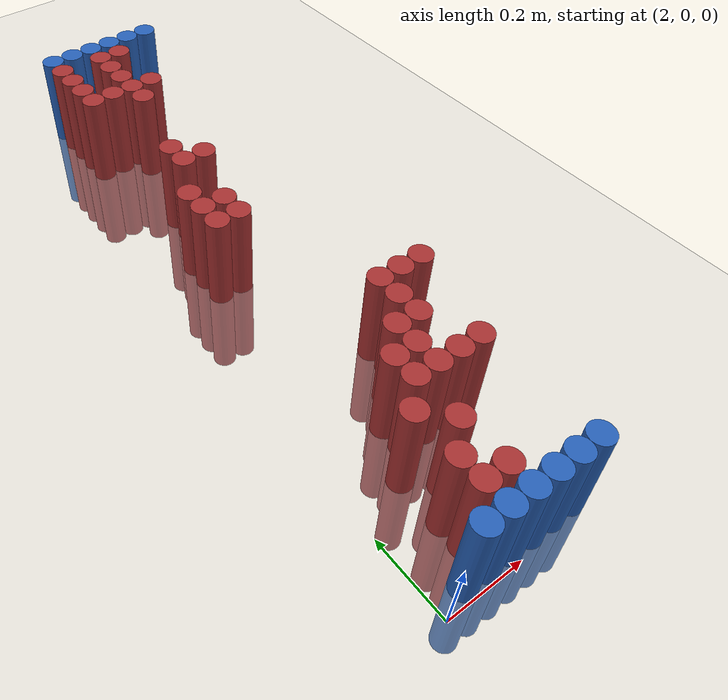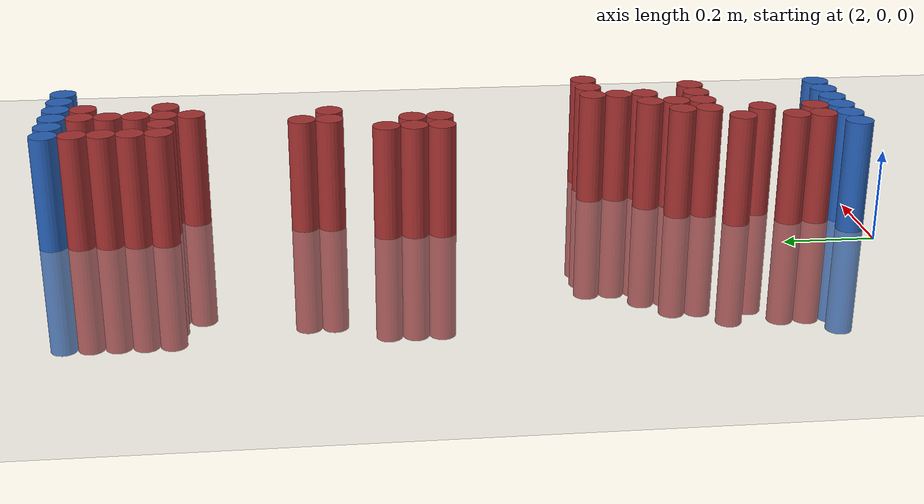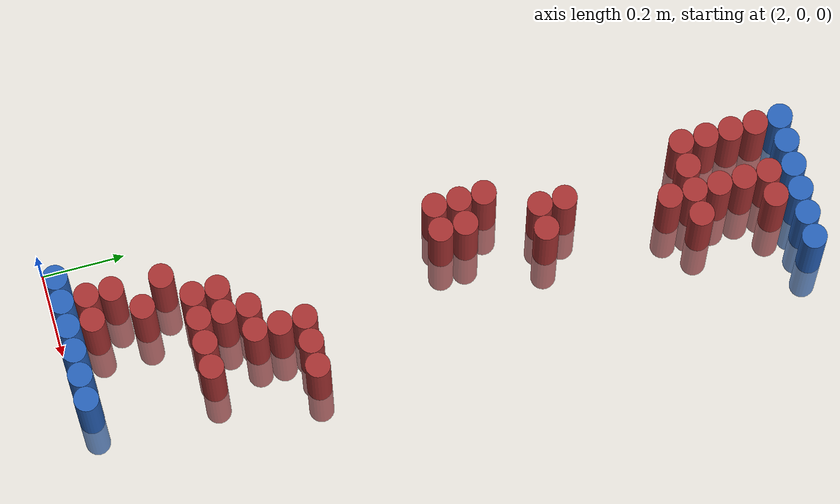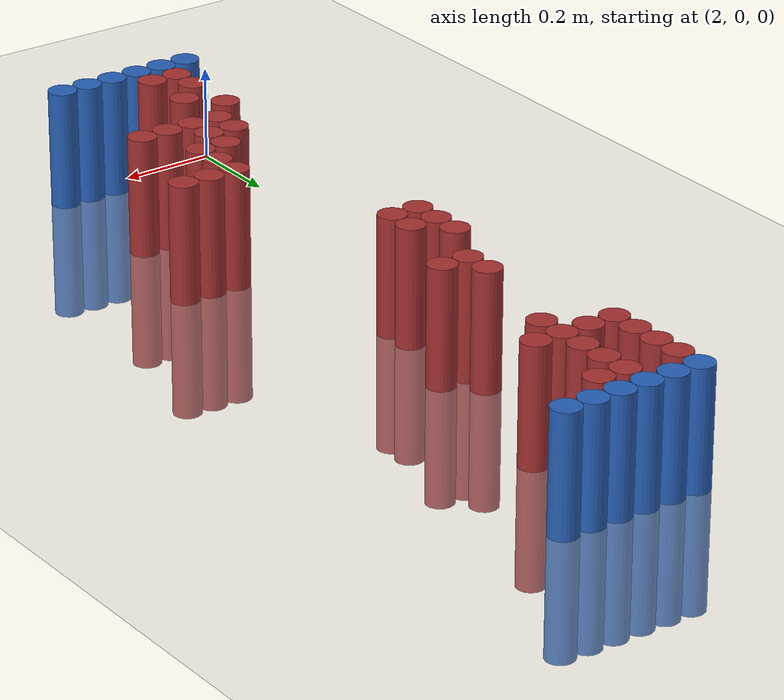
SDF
<sdf version="1.6">
 <world name="default">
  <model name="ground_plane">
   <static>1</static>
   <link name="link">
    <collision name="collision">
     <geometry><plane><normal>0 0 1</normal><size>100 100</size></plane></geometry>
     <surface><friction><ode><mu>100</mu><mu2>50</mu2></ode></friction></surface>
    </collision>
    <visual name="visual">
     <cast_shadows>0</cast_shadows>
     <geometry><plane><normal>0 0 1</normal><size>100 100</size></plane></geometry>
     <material>
      <script><uri>file://media/materials/scripts/gazebo.material</uri><name>Gazebo/Grey</name></script>
     </material>
    </visual>
   </link>
  </model>
  <model name="unit_cylinder_96">
   <static>1</static>
   <pose>2.130000 1.770000 0.000000 0.000000 0.000000 0.000000</pose>
   <link name="link">
    <inertial>
     <mass>1</mass>
     <inertia><ixx>0.145833</ixx><ixy>0</ixy><ixz>0</ixz><iyy>0.145833</iyy><iyz>0</iyz><izz>0.125</izz></inertia>
    </inertial>
    <collision name="collision">
     <geometry><cylinder><radius>0.030000</radius><length>0.5</length></cylinder></geometry>
    </collision>
    <visual name="visual">
     <geometry><cylinder><radius>0.030000</radius><length>0.5</length></cylinder></geometry>
     <material>
      <ambient>0.152000 0.379000 0.720000 1</ambient>
      <diffuse>0.152000 0.379000 0.720000 1</diffuse>
     </material>
     <material>
      <script><name>Gazebo/Grey</name><uri>file://media/materials/scripts/gazebo.material</uri></script>
     </material>
    </visual>
   </link>
  </model>
  <model name="unit_cylinder_97">
   <static>1</static>
   <pose>2.190000 1.770000 0.000000 0.000000 0.000000 0.000000</pose>
   <link name="link">
    <inertial>
     <mass>1</mass>
     <inertia><ixx>0.145833</ixx><ixy>0</ixy><ixz>0</ixz><iyy>0.145833</iyy><iyz>0</iyz><izz>0.125</izz></inertia>
    </inertial>
    <collision name="collision">
     <geometry><cylinder><radius>0.030000</radius><length>0.5</length></cylinder></geometry>
    </collision>
    <visual name="visual">
     <geometry><cylinder><radius>0.030000</radius><length>0.5</length></cylinder></geometry>
     <material>
      <ambient>0.152000 0.379000 0.720000 1</ambient>
      <diffuse>0.152000 0.379000 0.720000 1</diffuse>
     </material>
     <material>
      <script><name>Gazebo/Grey</name><uri>file://media/materials/scripts/gazebo.material</uri></script>
     </material>
    </visual>
   </link>
  </model>
  <model name="unit_cylinder_98">
   <static>1</static>
   <pose>2.250000 1.770000 0.000000 0.000000 0.000000 0.000000</pose>
   <link name="link">
    <inertial>
     <mass>1</mass>
     <inertia><ixx>0.145833</ixx><ixy>0</ixy><ixz>0</ixz><iyy>0.145833</iyy><iyz>0</iyz><izz>0.125</izz></inertia>
    </inertial>
    <collision name="collision">
     <geometry><cylinder><radius>0.030000</radius><length>0.5</length></cylinder></geometry>
    </collision>
    <visual name="visual">
     <geometry><cylinder><radius>0.030000</radius><length>0.5</length></cylinder></geometry>
     <material>
      <ambient>0.152000 0.379000 0.720000 1</ambient>
      <diffuse>0.152000 0.379000 0.720000 1</diffuse>
     </material>
     <material>
      <script><name>Gazebo/Grey</name><uri>file://media/materials/scripts/gazebo.material</uri></script>
     </material>
    </visual>
   </link>
  </model>
  <model name="unit_cylinder_99">
   <static>1</static>
   <pose>2.310000 1.770000 0.000000 0.000000 0.000000 0.000000</pose>
   <link name="link">
    <inertial>
     <mass>1</mass>
     <inertia><ixx>0.145833</ixx><ixy>0</ixy><ixz>0</ixz><iyy>0.145833</iyy><iyz>0</iyz><izz>0.125</izz></inertia>
    </inertial>
    <collision name="collision">
     <geometry><cylinder><radius>0.030000</radius><length>0.5</length></cylinder></geometry>
    </collision>
    <visual name="visual">
     <geometry><cylinder><radius>0.030000</radius><length>0.5</length></cylinder></geometry>
     <material>
      <ambient>0.152000 0.379000 0.720000 1</ambient>
      <diffuse>0.152000 0.379000 0.720000 1</diffuse>
     </material>
     <material>
      <script><name>Gazebo/Grey</name><uri>file://media/materials/scripts/gazebo.material</uri></script>
     </material>
    </visual>
   </link>
  </model>
  <model name="unit_cylinder_100">
   <static>1</static>
   <pose>2.370000 1.770000 0.000000 0.000000 0.000000 0.000000</pose>
   <link name="link">
    <inertial>
     <mass>1</mass>
     <inertia><ixx>0.145833</ixx><ixy>0</ixy><ixz>0</ixz><iyy>0.145833</iyy><iyz>0</iyz><izz>0.125</izz></inertia>
    </inertial>
    <collision name="collision">
     <geometry><cylinder><radius>0.030000</radius><length>0.5</length></cylinder></geometry>
    </collision>
    <visual name="visual">
     <geometry><cylinder><radius>0.030000</radius><length>0.5</length></cylinder></geometry>
     <material>
      <ambient>0.152000 0.379000 0.720000 1</ambient>
      <diffuse>0.152000 0.379000 0.720000 1</diffuse>
     </material>
     <material>
      <script><name>Gazebo/Grey</name><uri>file://media/materials/scripts/gazebo.material</uri></script>
     </material>
    </visual>
   </link>
  </model>
  <model name="unit_cylinder_101">
   <static>1</static>
   <pose>2.430000 1.770000 0.000000 0.000000 0.000000 0.000000</pose>
   <link name="link">
    <inertial>
     <mass>1</mass>
     <inertia><ixx>0.145833</ixx><ixy>0</ixy><ixz>0</ixz><iyy>0.145833</iyy><iyz>0</iyz><izz>0.125</izz></inertia>
    </inertial>
    <collision name="collision">
     <geometry><cylinder><radius>0.030000</radius><length>0.5</length></cylinder></geometry>
    </collision>
    <visual name="visual">
     <geometry><cylinder><radius>0.030000</radius><length>0.5</length></cylinder></geometry>
     <material>
      <ambient>0.152000 0.379000 0.720000 1</ambient>
      <diffuse>0.152000 0.379000 0.720000 1</diffuse>
     </material>
     <material>
      <script><name>Gazebo/Grey</name><uri>file://media/materials/scripts/gazebo.material</uri></script>
     </material>
    </visual>
   </link>
  </model>
  <model name="unit_cylinder_125">
   <static>1</static>
   <pose>2.130000 1.710000 0.000000 0.000000 0.000000 0.000000</pose>
   <link name="link">
    <inertial>
     <mass>1</mass>
     <inertia><ixx>0.145833</ixx><ixy>0</ixy><ixz>0</ixz><iyy>0.145833</iyy><iyz>0</iyz><izz>0.125</izz></inertia>
    </inertial>
    <collision name="collision">
     <geometry><cylinder><radius>0.030000</radius><length>0.5</length></cylinder></geometry>
    </collision>
    <visual name="visual">
     <geometry><cylinder><radius>0.030000</radius><length>0.5</length></cylinder></geometry>
     <material>
      <ambient>0.648000 0.192000 0.192000 1</ambient>
      <diffuse>0.648000 0.192000 0.192000 1</diffuse>
     </material>
     <material>
      <script><name>Gazebo/Grey</name><uri>file://media/materials/scripts/gazebo.material</uri></script>
     </material>
    </visual>
   </link>
  </model>
  <model name="unit_cylinder_126">
   <static>1</static>
   <pose>2.250000 1.710000 0.000000 0.000000 0.000000 0.000000</pose>
   <link name="link">
    <inertial>
     <mass>1</mass>
     <inertia><ixx>0.145833</ixx><ixy>0</ixy><ixz>0</ixz><iyy>0.145833</iyy><iyz>0</iyz><izz>0.125</izz></inertia>
    </inertial>
    <collision name="collision">
     <geometry><cylinder><radius>0.030000</radius><length>0.5</length></cylinder></geometry>
    </collision>
    <visual name="visual">
     <geometry><cylinder><radius>0.030000</radius><length>0.5</length></cylinder></geometry>
     <material>
      <ambient>0.648000 0.192000 0.192000 1</ambient>
      <diffuse>0.648000 0.192000 0.192000 1</diffuse>
     </material>
     <material>
      <script><name>Gazebo/Grey</name><uri>file://media/materials/scripts/gazebo.material</uri></script>
     </material>
    </visual>
   </link>
  </model>
  <model name="unit_cylinder_127">
   <static>1</static>
   <pose>2.310000 1.710000 0.000000 0.000000 0.000000 0.000000</pose>
   <link name="link">
    <inertial>
     <mass>1</mass>
     <inertia><ixx>0.145833</ixx><ixy>0</ixy><ixz>0</ixz><iyy>0.145833</iyy><iyz>0</iyz><izz>0.125</izz></inertia>
    </inertial>
    <collision name="collision">
     <geometry><cylinder><radius>0.030000</radius><length>0.5</length></cylinder></geometry>
    </collision>
    <visual name="visual">
     <geometry><cylinder><radius>0.030000</radius><length>0.5</length></cylinder></geometry>
     <material>
      <ambient>0.648000 0.192000 0.192000 1</ambient>
      <diffuse>0.648000 0.192000 0.192000 1</diffuse>
     </material>
     <material>
      <script><name>Gazebo/Grey</name><uri>file://media/materials/scripts/gazebo.material</uri></script>
     </material>
    </visual>
   </link>
  </model>
  <model name="unit_cylinder_134">
   <static>1</static>
   <pose>2.130000 1.650000 0.000000 0.000000 0.000000 0.000000</pose>
   <link name="link">
    <inertial>
     <mass>1</mass>
     <inertia><ixx>0.145833</ixx><ixy>0</ixy><ixz>0</ixz><iyy>0.145833</iyy><iyz>0</iyz><izz>0.125</izz></inertia>
    </inertial>
    <collision name="collision">
     <geometry><cylinder><radius>0.030000</radius><length>0.5</length></cylinder></geometry>
    </collision>
    <visual name="visual">
     <geometry><cylinder><radius>0.030000</radius><length>0.5</length></cylinder></geometry>
     <material>
      <ambient>0.648000 0.192000 0.192000 1</ambient>
      <diffuse>0.648000 0.192000 0.192000 1</diffuse>
     </material>
     <material>
      <script><name>Gazebo/Grey</name><uri>file://media/materials/scripts/gazebo.material</uri></script>
     </material>
    </visual>
   </link>
  </model>
  <model name="unit_cylinder_135">
   <static>1</static>
   <pose>2.250000 1.650000 0.000000 0.000000 0.000000 0.000000</pose>
   <link name="link">
    <inertial>
     <mass>1</mass>
     <inertia><ixx>0.145833</ixx><ixy>0</ixy><ixz>0</ixz><iyy>0.145833</iyy><iyz>0</iyz><izz>0.125</izz></inertia>
    </inertial>
    <collision name="collision">
     <geometry><cylinder><radius>0.030000</radius><length>0.5</length></cylinder></geometry>
    </collision>
    <visual name="visual">
     <geometry><cylinder><radius>0.030000</radius><length>0.5</length></cylinder></geometry>
     <material>
      <ambient>0.648000 0.192000 0.192000 1</ambient>
      <diffuse>0.648000 0.192000 0.192000 1</diffuse>
     </material>
     <material>
      <script><name>Gazebo/Grey</name><uri>file://media/materials/scripts/gazebo.material</uri></script>
     </material>
    </visual>
   </link>
  </model>
  <model name="unit_cylinder_142">
   <static>1</static>
   <pose>2.130000 1.590000 0.000000 0.000000 0.000000 0.000000</pose>
   <link name="link">
    <inertial>
     <mass>1</mass>
     <inertia><ixx>0.145833</ixx><ixy>0</ixy><ixz>0</ixz><iyy>0.145833</iyy><iyz>0</iyz><izz>0.125</izz></inertia>
    </inertial>
    <collision name="collision">
     <geometry><cylinder><radius>0.030000</radius><length>0.5</length></cylinder></geometry>
    </collision>
    <visual name="visual">
     <geometry><cylinder><radius>0.030000</radius><length>0.5</length></cylinder></geometry>
     <material>
      <ambient>0.648000 0.192000 0.192000 1</ambient>
      <diffuse>0.648000 0.192000 0.192000 1</diffuse>
     </material>
     <material>
      <script><name>Gazebo/Grey</name><uri>file://media/materials/scripts/gazebo.material</uri></script>
     </material>
    </visual>
   </link>
  </model>
  <model name="unit_cylinder_143">
   <static>1</static>
   <pose>2.250000 1.590000 0.000000 0.000000 0.000000 0.000000</pose>
   <link name="link">
    <inertial>
     <mass>1</mass>
     <inertia><ixx>0.145833</ixx><ixy>0</ixy><ixz>0</ixz><iyy>0.145833</iyy><iyz>0</iyz><izz>0.125</izz></inertia>
    </inertial>
    <collision name="collision">
     <geometry><cylinder><radius>0.030000</radius><length>0.5</length></cylinder></geometry>
    </collision>
    <visual name="visual">
     <geometry><cylinder><radius>0.030000</radius><length>0.5</length></cylinder></geometry>
     <material>
      <ambient>0.648000 0.192000 0.192000 1</ambient>
      <diffuse>0.648000 0.192000 0.192000 1</diffuse>
     </material>
     <material>
      <script><name>Gazebo/Grey</name><uri>file://media/materials/scripts/gazebo.material</uri></script>
     </material>
    </visual>
   </link>
  </model>
  <model name="unit_cylinder_152">
   <static>1</static>
   <pose>2.130000 1.530000 0.000000 0.000000 0.000000 0.000000</pose>
   <link name="link">
    <inertial>
     <mass>1</mass>
     <inertia><ixx>0.145833</ixx><ixy>0</ixy><ixz>0</ixz><iyy>0.145833</iyy><iyz>0</iyz><izz>0.125</izz></inertia>
    </inertial>
    <collision name="collision">
     <geometry><cylinder><radius>0.030000</radius><length>0.5</length></cylinder></geometry>
    </collision>
    <visual name="visual">
     <geometry><cylinder><radius>0.030000</radius><length>0.5</length></cylinder></geometry>
     <material>
      <ambient>0.648000 0.192000 0.192000 1</ambient>
      <diffuse>0.648000 0.192000 0.192000 1</diffuse>
     </material>
     <material>
      <script><name>Gazebo/Grey</name><uri>file://media/materials/scripts/gazebo.material</uri></script>
     </material>
    </visual>
   </link>
  </model>
  <model name="unit_cylinder_153">
   <static>1</static>
   <pose>2.190000 1.530000 0.000000 0.000000 0.000000 0.000000</pose>
   <link name="link">
    <inertial>
     <mass>1</mass>
     <inertia><ixx>0.145833</ixx><ixy>0</ixy><ixz>0</ixz><iyy>0.145833</iyy><iyz>0</iyz><izz>0.125</izz></inertia>
    </inertial>
    <collision name="collision">
     <geometry><cylinder><radius>0.030000</radius><length>0.5</length></cylinder></geometry>
    </collision>
    <visual name="visual">
     <geometry><cylinder><radius>0.030000</radius><length>0.5</length></cylinder></geometry>
     <material>
      <ambient>0.648000 0.192000 0.192000 1</ambient>
      <diffuse>0.648000 0.192000 0.192000 1</diffuse>
     </material>
     <material>
      <script><name>Gazebo/Grey</name><uri>file://media/materials/scripts/gazebo.material</uri></script>
     </material>
    </visual>
   </link>
  </model>
  <model name="unit_cylinder_154">
   <static>1</static>
   <pose>2.250000 1.530000 0.000000 0.000000 0.000000 0.000000</pose>
   <link name="link">
    <inertial>
     <mass>1</mass>
     <inertia><ixx>0.145833</ixx><ixy>0</ixy><ixz>0</ixz><iyy>0.145833</iyy><iyz>0</iyz><izz>0.125</izz></inertia>
    </inertial>
    <collision name="collision">
     <geometry><cylinder><radius>0.030000</radius><length>0.5</length></cylinder></geometry>
    </collision>
    <visual name="visual">
     <geometry><cylinder><radius>0.030000</radius><length>0.5</length></cylinder></geometry>
     <material>
      <ambient>0.648000 0.192000 0.192000 1</ambient>
      <diffuse>0.648000 0.192000 0.192000 1</diffuse>
     </material>
     <material>
      <script><name>Gazebo/Grey</name><uri>file://media/materials/scripts/gazebo.material</uri></script>
     </material>
    </visual>
   </link>
  </model>
  <model name="unit_cylinder_155">
   <static>1</static>
   <pose>2.310000 1.530000 0.000000 0.000000 0.000000 0.000000</pose>
   <link name="link">
    <inertial>
     <mass>1</mass>
     <inertia><ixx>0.145833</ixx><ixy>0</ixy><ixz>0</ixz><iyy>0.145833</iyy><iyz>0</iyz><izz>0.125</izz></inertia>
    </inertial>
    <collision name="collision">
     <geometry><cylinder><radius>0.030000</radius><length>0.5</length></cylinder></geometry>
    </collision>
    <visual name="visual">
     <geometry><cylinder><radius>0.030000</radius><length>0.5</length></cylinder></geometry>
     <material>
      <ambient>0.648000 0.192000 0.192000 1</ambient>
      <diffuse>0.648000 0.192000 0.192000 1</diffuse>
     </material>
     <material>
      <script><name>Gazebo/Grey</name><uri>file://media/materials/scripts/gazebo.material</uri></script>
     </material>
    </visual>
   </link>
  </model>
  <model name="unit_cylinder_160">
   <static>1</static>
   <pose>2.250000 1.470000 0.000000 0.000000 0.000000 0.000000</pose>
   <link name="link">
    <inertial>
     <mass>1</mass>
     <inertia><ixx>0.145833</ixx><ixy>0</ixy><ixz>0</ixz><iyy>0.145833</iyy><iyz>0</iyz><izz>0.125</izz></inertia>
    </inertial>
    <collision name="collision">
     <geometry><cylinder><radius>0.030000</radius><length>0.5</length></cylinder></geometry>
    </collision>
    <visual name="visual">
     <geometry><cylinder><radius>0.030000</radius><length>0.5</length></cylinder></geometry>
     <material>
      <ambient>0.648000 0.192000 0.192000 1</ambient>
      <diffuse>0.648000 0.192000 0.192000 1</diffuse>
     </material>
     <material>
      <script><name>Gazebo/Grey</name><uri>file://media/materials/scripts/gazebo.material</uri></script>
     </material>
    </visual>
   </link>
  </model>
  <model name="unit_cylinder_171">
   <static>1</static>
   <pose>2.190000 1.230000 0.000000 0.000000 0.000000 0.000000</pose>
   <link name="link">
    <inertial>
     <mass>1</mass>
     <inertia><ixx>0.145833</ixx><ixy>0</ixy><ixz>0</ixz><iyy>0.145833</iyy><iyz>0</iyz><izz>0.125</izz></inertia>
    </inertial>
    <collision name="collision">
     <geometry><cylinder><radius>0.030000</radius><length>0.5</length></cylinder></geometry>
    </collision>
    <visual name="visual">
     <geometry><cylinder><radius>0.030000</radius><length>0.5</length></cylinder></geometry>
     <material>
      <ambient>0.648000 0.192000 0.192000 1</ambient>
      <diffuse>0.648000 0.192000 0.192000 1</diffuse>
     </material>
     <material>
      <script><name>Gazebo/Grey</name><uri>file://media/materials/scripts/gazebo.material</uri></script>
     </material>
    </visual>
   </link>
  </model>
  <model name="unit_cylinder_172">
   <static>1</static>
   <pose>2.190000 1.170000 0.000000 0.000000 0.000000 0.000000</pose>
   <link name="link">
    <inertial>
     <mass>1</mass>
     <inertia><ixx>0.145833</ixx><ixy>0</ixy><ixz>0</ixz><iyy>0.145833</iyy><iyz>0</iyz><izz>0.125</izz></inertia>
    </inertial>
    <collision name="collision">
     <geometry><cylinder><radius>0.030000</radius><length>0.5</length></cylinder></geometry>
    </collision>
    <visual name="visual">
     <geometry><cylinder><radius>0.030000</radius><length>0.5</length></cylinder></geometry>
     <material>
      <ambient>0.648000 0.192000 0.192000 1</ambient>
      <diffuse>0.648000 0.192000 0.192000 1</diffuse>
     </material>
     <material>
      <script><name>Gazebo/Grey</name><uri>file://media/materials/scripts/gazebo.material</uri></script>
     </material>
    </visual>
   </link>
  </model>
  <model name="unit_cylinder_173">
   <static>1</static>
   <pose>2.250000 1.170000 0.000000 0.000000 0.000000 0.000000</pose>
   <link name="link">
    <inertial>
     <mass>1</mass>
     <inertia><ixx>0.145833</ixx><ixy>0</ixy><ixz>0</ixz><iyy>0.145833</iyy><iyz>0</iyz><izz>0.125</izz></inertia>
    </inertial>
    <collision name="collision">
     <geometry><cylinder><radius>0.030000</radius><length>0.5</length></cylinder></geometry>
    </collision>
    <visual name="visual">
     <geometry><cylinder><radius>0.030000</radius><length>0.5</length></cylinder></geometry>
     <material>
      <ambient>0.648000 0.192000 0.192000 1</ambient>
      <diffuse>0.648000 0.192000 0.192000 1</diffuse>
     </material>
     <material>
      <script><name>Gazebo/Grey</name><uri>file://media/materials/scripts/gazebo.material</uri></script>
     </material>
    </visual>
   </link>
  </model>
  <model name="unit_cylinder_176">
   <static>1</static>
   <pose>2.130000 1.050000 0.000000 0.000000 0.000000 0.000000</pose>
   <link name="link">
    <inertial>
     <mass>1</mass>
     <inertia><ixx>0.145833</ixx><ixy>0</ixy><ixz>0</ixz><iyy>0.145833</iyy><iyz>0</iyz><izz>0.125</izz></inertia>
    </inertial>
    <collision name="collision">
     <geometry><cylinder><radius>0.030000</radius><length>0.5</length></cylinder></geometry>
    </collision>
    <visual name="visual">
     <geometry><cylinder><radius>0.030000</radius><length>0.5</length></cylinder></geometry>
     <material>
      <ambient>0.648000 0.192000 0.192000 1</ambient>
      <diffuse>0.648000 0.192000 0.192000 1</diffuse>
     </material>
     <material>
      <script><name>Gazebo/Grey</name><uri>file://media/materials/scripts/gazebo.material</uri></script>
     </material>
    </visual>
   </link>
  </model>
  <model name="unit_cylinder_178">
   <static>1</static>
   <pose>2.130000 0.990000 0.000000 0.000000 0.000000 0.000000</pose>
   <link name="link">
    <inertial>
     <mass>1</mass>
     <inertia><ixx>0.145833</ixx><ixy>0</ixy><ixz>0</ixz><iyy>0.145833</iyy><iyz>0</iyz><izz>0.125</izz></inertia>
    </inertial>
    <collision name="collision">
     <geometry><cylinder><radius>0.030000</radius><length>0.5</length></cylinder></geometry>
    </collision>
    <visual name="visual">
     <geometry><cylinder><radius>0.030000</radius><length>0.5</length></cylinder></geometry>
     <material>
      <ambient>0.648000 0.192000 0.192000 1</ambient>
      <diffuse>0.648000 0.192000 0.192000 1</diffuse>
     </material>
     <material>
      <script><name>Gazebo/Grey</name><uri>file://media/materials/scripts/gazebo.material</uri></script>
     </material>
    </visual>
   </link>
  </model>
  <model name="unit_cylinder_179">
   <static>1</static>
   <pose>2.190000 0.990000 0.000000 0.000000 0.000000 0.000000</pose>
   <link name="link">
    <inertial>
     <mass>1</mass>
     <inertia><ixx>0.145833</ixx><ixy>0</ixy><ixz>0</ixz><iyy>0.145833</iyy><iyz>0</iyz><izz>0.125</izz></inertia>
    </inertial>
    <collision name="collision">
     <geometry><cylinder><radius>0.030000</radius><length>0.5</length></cylinder></geometry>
    </collision>
    <visual name="visual">
     <geometry><cylinder><radius>0.030000</radius><length>0.5</length></cylinder></geometry>
     <material>
      <ambient>0.648000 0.192000 0.192000 1</ambient>
      <diffuse>0.648000 0.192000 0.192000 1</diffuse>
     </material>
     <material>
      <script><name>Gazebo/Grey</name><uri>file://media/materials/scripts/gazebo.material</uri></script>
     </material>
    </visual>
   </link>
  </model>
  <model name="unit_cylinder_183">
   <static>1</static>
   <pose>2.130000 0.930000 0.000000 0.000000 0.000000 0.000000</pose>
   <link name="link">
    <inertial>
     <mass>1</mass>
     <inertia><ixx>0.145833</ixx><ixy>0</ixy><ixz>0</ixz><iyy>0.145833</iyy><iyz>0</iyz><izz>0.125</izz></inertia>
    </inertial>
    <collision name="collision">
     <geometry><cylinder><radius>0.030000</radius><length>0.5</length></cylinder></geometry>
    </collision>
    <visual name="visual">
     <geometry><cylinder><radius>0.030000</radius><length>0.5</length></cylinder></geometry>
     <material>
      <ambient>0.648000 0.192000 0.192000 1</ambient>
      <diffuse>0.648000 0.192000 0.192000 1</diffuse>
     </material>
     <material>
      <script><name>Gazebo/Grey</name><uri>file://media/materials/scripts/gazebo.material</uri></script>
     </material>
    </visual>
   </link>
  </model>
  <model name="unit_cylinder_184">
   <static>1</static>
   <pose>2.190000 0.930000 0.000000 0.000000 0.000000 0.000000</pose>
   <link name="link">
    <inertial>
     <mass>1</mass>
     <inertia><ixx>0.145833</ixx><ixy>0</ixy><ixz>0</ixz><iyy>0.145833</iyy><iyz>0</iyz><izz>0.125</izz></inertia>
    </inertial>
    <collision name="collision">
     <geometry><cylinder><radius>0.030000</radius><length>0.5</length></cylinder></geometry>
    </collision>
    <visual name="visual">
     <geometry><cylinder><radius>0.030000</radius><length>0.5</length></cylinder></geometry>
     <material>
      <ambient>0.648000 0.192000 0.192000 1</ambient>
      <diffuse>0.648000 0.192000 0.192000 1</diffuse>
     </material>
     <material>
      <script><name>Gazebo/Grey</name><uri>file://media/materials/scripts/gazebo.material</uri></script>
     </material>
    </visual>
   </link>
  </model>
  <model name="unit_cylinder_205">
   <static>1</static>
   <pose>2.310000 0.570000 0.000000 0.000000 0.000000 0.000000</pose>
   <link name="link">
    <inertial>
     <mass>1</mass>
     <inertia><ixx>0.145833</ixx><ixy>0</ixy><ixz>0</ixz><iyy>0.145833</iyy><iyz>0</iyz><izz>0.125</izz></inertia>
    </inertial>
    <collision name="collision">
     <geometry><cylinder><radius>0.030000</radius><length>0.5</length></cylinder></geometry>
    </collision>
    <visual name="visual">
     <geometry><cylinder><radius>0.030000</radius><length>0.5</length></cylinder></geometry>
     <material>
      <ambient>0.648000 0.192000 0.192000 1</ambient>
      <diffuse>0.648000 0.192000 0.192000 1</diffuse>
     </material>
     <material>
      <script><name>Gazebo/Grey</name><uri>file://media/materials/scripts/gazebo.material</uri></script>
     </material>
    </visual>
   </link>
  </model>
  <model name="unit_cylinder_206">
   <static>1</static>
   <pose>2.370000 0.570000 0.000000 0.000000 0.000000 0.000000</pose>
   <link name="link">
    <inertial>
     <mass>1</mass>
     <inertia><ixx>0.145833</ixx><ixy>0</ixy><ixz>0</ixz><iyy>0.145833</iyy><iyz>0</iyz><izz>0.125</izz></inertia>
    </inertial>
    <collision name="collision">
     <geometry><cylinder><radius>0.030000</radius><length>0.5</length></cylinder></geometry>
    </collision>
    <visual name="visual">
     <geometry><cylinder><radius>0.030000</radius><length>0.5</length></cylinder></geometry>
     <material>
      <ambient>0.648000 0.192000 0.192000 1</ambient>
      <diffuse>0.648000 0.192000 0.192000 1</diffuse>
     </material>
     <material>
      <script><name>Gazebo/Grey</name><uri>file://media/materials/scripts/gazebo.material</uri></script>
     </material>
    </visual>
   </link>
  </model>
  <model name="unit_cylinder_207">
   <static>1</static>
   <pose>2.430000 0.570000 0.000000 0.000000 0.000000 0.000000</pose>
   <link name="link">
    <inertial>
     <mass>1</mass>
     <inertia><ixx>0.145833</ixx><ixy>0</ixy><ixz>0</ixz><iyy>0.145833</iyy><iyz>0</iyz><izz>0.125</izz></inertia>
    </inertial>
    <collision name="collision">
     <geometry><cylinder><radius>0.030000</radius><length>0.5</length></cylinder></geometry>
    </collision>
    <visual name="visual">
     <geometry><cylinder><radius>0.030000</radius><length>0.5</length></cylinder></geometry>
     <material>
      <ambient>0.648000 0.192000 0.192000 1</ambient>
      <diffuse>0.648000 0.192000 0.192000 1</diffuse>
     </material>
     <material>
      <script><name>Gazebo/Grey</name><uri>file://media/materials/scripts/gazebo.material</uri></script>
     </material>
    </visual>
   </link>
  </model>
  <model name="unit_cylinder_211">
   <static>1</static>
   <pose>2.310000 0.510000 0.000000 0.000000 0.000000 0.000000</pose>
   <link name="link">
    <inertial>
     <mass>1</mass>
     <inertia><ixx>0.145833</ixx><ixy>0</ixy><ixz>0</ixz><iyy>0.145833</iyy><iyz>0</iyz><izz>0.125</izz></inertia>
    </inertial>
    <collision name="collision">
     <geometry><cylinder><radius>0.030000</radius><length>0.5</length></cylinder></geometry>
    </collision>
    <visual name="visual">
     <geometry><cylinder><radius>0.030000</radius><length>0.5</length></cylinder></geometry>
     <material>
      <ambient>0.648000 0.192000 0.192000 1</ambient>
      <diffuse>0.648000 0.192000 0.192000 1</diffuse>
     </material>
     <material>
      <script><name>Gazebo/Grey</name><uri>file://media/materials/scripts/gazebo.material</uri></script>
     </material>
    </visual>
   </link>
  </model>
  <model name="unit_cylinder_217">
   <static>1</static>
   <pose>2.250000 0.450000 0.000000 0.000000 0.000000 0.000000</pose>
   <link name="link">
    <inertial>
     <mass>1</mass>
     <inertia><ixx>0.145833</ixx><ixy>0</ixy><ixz>0</ixz><iyy>0.145833</iyy><iyz>0</iyz><izz>0.125</izz></inertia>
    </inertial>
    <collision name="collision">
     <geometry><cylinder><radius>0.030000</radius><length>0.5</length></cylinder></geometry>
    </collision>
    <visual name="visual">
     <geometry><cylinder><radius>0.030000</radius><length>0.5</length></cylinder></geometry>
     <material>
      <ambient>0.648000 0.192000 0.192000 1</ambient>
      <diffuse>0.648000 0.192000 0.192000 1</diffuse>
     </material>
     <material>
      <script><name>Gazebo/Grey</name><uri>file://media/materials/scripts/gazebo.material</uri></script>
     </material>
    </visual>
   </link>
  </model>
  <model name="unit_cylinder_218">
   <static>1</static>
   <pose>2.310000 0.450000 0.000000 0.000000 0.000000 0.000000</pose>
   <link name="link">
    <inertial>
     <mass>1</mass>
     <inertia><ixx>0.145833</ixx><ixy>0</ixy><ixz>0</ixz><iyy>0.145833</iyy><iyz>0</iyz><izz>0.125</izz></inertia>
    </inertial>
    <collision name="collision">
     <geometry><cylinder><radius>0.030000</radius><length>0.5</length></cylinder></geometry>
    </collision>
    <visual name="visual">
     <geometry><cylinder><radius>0.030000</radius><length>0.5</length></cylinder></geometry>
     <material>
      <ambient>0.648000 0.192000 0.192000 1</ambient>
      <diffuse>0.648000 0.192000 0.192000 1</diffuse>
     </material>
     <material>
      <script><name>Gazebo/Grey</name><uri>file://media/materials/scripts/gazebo.material</uri></script>
     </material>
    </visual>
   </link>
  </model>
  <model name="unit_cylinder_224">
   <static>1</static>
   <pose>2.190000 0.390000 0.000000 0.000000 0.000000 0.000000</pose>
   <link name="link">
    <inertial>
     <mass>1</mass>
     <inertia><ixx>0.145833</ixx><ixy>0</ixy><ixz>0</ixz><iyy>0.145833</iyy><iyz>0</iyz><izz>0.125</izz></inertia>
    </inertial>
    <collision name="collision">
     <geometry><cylinder><radius>0.030000</radius><length>0.5</length></cylinder></geometry>
    </collision>
    <visual name="visual">
     <geometry><cylinder><radius>0.030000</radius><length>0.5</length></cylinder></geometry>
     <material>
      <ambient>0.648000 0.192000 0.192000 1</ambient>
      <diffuse>0.648000 0.192000 0.192000 1</diffuse>
     </material>
     <material>
      <script><name>Gazebo/Grey</name><uri>file://media/materials/scripts/gazebo.material</uri></script>
     </material>
    </visual>
   </link>
  </model>
  <model name="unit_cylinder_225">
   <static>1</static>
   <pose>2.250000 0.390000 0.000000 0.000000 0.000000 0.000000</pose>
   <link name="link">
    <inertial>
     <mass>1</mass>
     <inertia><ixx>0.145833</ixx><ixy>0</ixy><ixz>0</ixz><iyy>0.145833</iyy><iyz>0</iyz><izz>0.125</izz></inertia>
    </inertial>
    <collision name="collision">
     <geometry><cylinder><radius>0.030000</radius><length>0.5</length></cylinder></geometry>
    </collision>
    <visual name="visual">
     <geometry><cylinder><radius>0.030000</radius><length>0.5</length></cylinder></geometry>
     <material>
      <ambient>0.648000 0.192000 0.192000 1</ambient>
      <diffuse>0.648000 0.192000 0.192000 1</diffuse>
     </material>
     <material>
      <script><name>Gazebo/Grey</name><uri>file://media/materials/scripts/gazebo.material</uri></script>
     </material>
    </visual>
   </link>
  </model>
  <model name="unit_cylinder_228">
   <static>1</static>
   <pose>2.190000 0.330000 0.000000 0.000000 0.000000 0.000000</pose>
   <link name="link">
    <inertial>
     <mass>1</mass>
     <inertia><ixx>0.145833</ixx><ixy>0</ixy><ixz>0</ixz><iyy>0.145833</iyy><iyz>0</iyz><izz>0.125</izz></inertia>
    </inertial>
    <collision name="collision">
     <geometry><cylinder><radius>0.030000</radius><length>0.5</length></cylinder></geometry>
    </collision>
    <visual name="visual">
     <geometry><cylinder><radius>0.030000</radius><length>0.5</length></cylinder></geometry>
     <material>
      <ambient>0.648000 0.192000 0.192000 1</ambient>
      <diffuse>0.648000 0.192000 0.192000 1</diffuse>
     </material>
     <material>
      <script><name>Gazebo/Grey</name><uri>file://media/materials/scripts/gazebo.material</uri></script>
     </material>
    </visual>
   </link>
  </model>
  <model name="unit_cylinder_229">
   <static>1</static>
   <pose>2.250000 0.330000 0.000000 0.000000 0.000000 0.000000</pose>
   <link name="link">
    <inertial>
     <mass>1</mass>
     <inertia><ixx>0.145833</ixx><ixy>0</ixy><ixz>0</ixz><iyy>0.145833</iyy><iyz>0</iyz><izz>0.125</izz></inertia>
    </inertial>
    <collision name="collision">
     <geometry><cylinder><radius>0.030000</radius><length>0.5</length></cylinder></geometry>
    </collision>
    <visual name="visual">
     <geometry><cylinder><radius>0.030000</radius><length>0.5</length></cylinder></geometry>
     <material>
      <ambient>0.648000 0.192000 0.192000 1</ambient>
      <diffuse>0.648000 0.192000 0.192000 1</diffuse>
     </material>
     <material>
      <script><name>Gazebo/Grey</name><uri>file://media/materials/scripts/gazebo.material</uri></script>
     </material>
    </visual>
   </link>
  </model>
  <model name="unit_cylinder_230">
   <static>1</static>
   <pose>2.310000 0.330000 0.000000 0.000000 0.000000 0.000000</pose>
   <link name="link">
    <inertial>
     <mass>1</mass>
     <inertia><ixx>0.145833</ixx><ixy>0</ixy><ixz>0</ixz><iyy>0.145833</iyy><iyz>0</iyz><izz>0.125</izz></inertia>
    </inertial>
    <collision name="collision">
     <geometry><cylinder><radius>0.030000</radius><length>0.5</length></cylinder></geometry>
    </collision>
    <visual name="visual">
     <geometry><cylinder><radius>0.030000</radius><length>0.5</length></cylinder></geometry>
     <material>
      <ambient>0.648000 0.192000 0.192000 1</ambient>
      <diffuse>0.648000 0.192000 0.192000 1</diffuse>
     </material>
     <material>
      <script><name>Gazebo/Grey</name><uri>file://media/materials/scripts/gazebo.material</uri></script>
     </material>
    </visual>
   </link>
  </model>
  <model name="unit_cylinder_231">
   <static>1</static>
   <pose>2.370000 0.330000 0.000000 0.000000 0.000000 0.000000</pose>
   <link name="link">
    <inertial>
     <mass>1</mass>
     <inertia><ixx>0.145833</ixx><ixy>0</ixy><ixz>0</ixz><iyy>0.145833</iyy><iyz>0</iyz><izz>0.125</izz></inertia>
    </inertial>
    <collision name="collision">
     <geometry><cylinder><radius>0.030000</radius><length>0.5</length></cylinder></geometry>
    </collision>
    <visual name="visual">
     <geometry><cylinder><radius>0.030000</radius><length>0.5</length></cylinder></geometry>
     <material>
      <ambient>0.648000 0.192000 0.192000 1</ambient>
      <diffuse>0.648000 0.192000 0.192000 1</diffuse>
     </material>
     <material>
      <script><name>Gazebo/Grey</name><uri>file://media/materials/scripts/gazebo.material</uri></script>
     </material>
    </visual>
   </link>
  </model>
  <model name="unit_cylinder_235">
   <static>1</static>
   <pose>2.130000 0.270000 0.000000 0.000000 0.000000 0.000000</pose>
   <link name="link">
    <inertial>
     <mass>1</mass>
     <inertia><ixx>0.145833</ixx><ixy>0</ixy><ixz>0</ixz><iyy>0.145833</iyy><iyz>0</iyz><izz>0.125</izz></inertia>
    </inertial>
    <collision name="collision">
     <geometry><cylinder><radius>0.030000</radius><length>0.5</length></cylinder></geometry>
    </collision>
    <visual name="visual">
     <geometry><cylinder><radius>0.030000</radius><length>0.5</length></cylinder></geometry>
     <material>
      <ambient>0.648000 0.192000 0.192000 1</ambient>
      <diffuse>0.648000 0.192000 0.192000 1</diffuse>
     </material>
     <material>
      <script><name>Gazebo/Grey</name><uri>file://media/materials/scripts/gazebo.material</uri></script>
     </material>
    </visual>
   </link>
  </model>
  <model name="unit_cylinder_239">
   <static>1</static>
   <pose>2.190000 0.210000 0.000000 0.000000 0.000000 0.000000</pose>
   <link name="link">
    <inertial>
     <mass>1</mass>
     <inertia><ixx>0.145833</ixx><ixy>0</ixy><ixz>0</ixz><iyy>0.145833</iyy><iyz>0</iyz><izz>0.125</izz></inertia>
    </inertial>
    <collision name="collision">
     <geometry><cylinder><radius>0.030000</radius><length>0.5</length></cylinder></geometry>
    </collision>
    <visual name="visual">
     <geometry><cylinder><radius>0.030000</radius><length>0.5</length></cylinder></geometry>
     <material>
      <ambient>0.648000 0.192000 0.192000 1</ambient>
      <diffuse>0.648000 0.192000 0.192000 1</diffuse>
     </material>
     <material>
      <script><name>Gazebo/Grey</name><uri>file://media/materials/scripts/gazebo.material</uri></script>
     </material>
    </visual>
   </link>
  </model>
  <model name="unit_cylinder_242">
   <static>1</static>
   <pose>2.130000 0.150000 0.000000 0.000000 0.000000 0.000000</pose>
   <link name="link">
    <inertial>
     <mass>1</mass>
     <inertia><ixx>0.145833</ixx><ixy>0</ixy><ixz>0</ixz><iyy>0.145833</iyy><iyz>0</iyz><izz>0.125</izz></inertia>
    </inertial>
    <collision name="collision">
     <geometry><cylinder><radius>0.030000</radius><length>0.5</length></cylinder></geometry>
    </collision>
    <visual name="visual">
     <geometry><cylinder><radius>0.030000</radius><length>0.5</length></cylinder></geometry>
     <material>
      <ambient>0.648000 0.192000 0.192000 1</ambient>
      <diffuse>0.648000 0.192000 0.192000 1</diffuse>
     </material>
     <material>
      <script><name>Gazebo/Grey</name><uri>file://media/materials/scripts/gazebo.material</uri></script>
     </material>
    </visual>
   </link>
  </model>
  <model name="unit_cylinder_251">
   <static>1</static>
   <pose>2.130000 0.090000 0.000000 0.000000 0.000000 0.000000</pose>
   <link name="link">
    <inertial>
     <mass>1</mass>
     <inertia><ixx>0.145833</ixx><ixy>0</ixy><ixz>0</ixz><iyy>0.145833</iyy><iyz>0</iyz><izz>0.125</izz></inertia>
    </inertial>
    <collision name="collision">
     <geometry><cylinder><radius>0.030000</radius><length>0.5</length></cylinder></geometry>
    </collision>
    <visual name="visual">
     <geometry><cylinder><radius>0.030000</radius><length>0.5</length></cylinder></geometry>
     <material>
      <ambient>0.648000 0.192000 0.192000 1</ambient>
      <diffuse>0.648000 0.192000 0.192000 1</diffuse>
     </material>
     <material>
      <script><name>Gazebo/Grey</name><uri>file://media/materials/scripts/gazebo.material</uri></script>
     </material>
    </visual>
   </link>
  </model>
  <model name="unit_cylinder_252">
   <static>1</static>
   <pose>2.190000 0.090000 0.000000 0.000000 0.000000 0.000000</pose>
   <link name="link">
    <inertial>
     <mass>1</mass>
     <inertia><ixx>0.145833</ixx><ixy>0</ixy><ixz>0</ixz><iyy>0.145833</iyy><iyz>0</iyz><izz>0.125</izz></inertia>
    </inertial>
    <collision name="collision">
     <geometry><cylinder><radius>0.030000</radius><length>0.5</length></cylinder></geometry>
    </collision>
    <visual name="visual">
     <geometry><cylinder><radius>0.030000</radius><length>0.5</length></cylinder></geometry>
     <material>
      <ambient>0.648000 0.192000 0.192000 1</ambient>
      <diffuse>0.648000 0.192000 0.192000 1</diffuse>
     </material>
     <material>
      <script><name>Gazebo/Grey</name><uri>file://media/materials/scripts/gazebo.material</uri></script>
     </material>
    </visual>
   </link>
  </model>
  <model name="unit_cylinder_264">
   <static>1</static>
   <pose>2.070000 0.030000 0.000000 0.000000 0.000000 0.000000</pose>
   <link name="link">
    <inertial>
     <mass>1</mass>
     <inertia><ixx>0.145833</ixx><ixy>0</ixy><ixz>0</ixz><iyy>0.145833</iyy><iyz>0</iyz><izz>0.125</izz></inertia>
    </inertial>
    <collision name="collision">
     <geometry><cylinder><radius>0.030000</radius><length>0.5</length></cylinder></geometry>
    </collision>
    <visual name="visual">
     <geometry><cylinder><radius>0.030000</radius><length>0.5</length></cylinder></geometry>
     <material>
      <ambient>0.152000 0.379000 0.720000 1</ambient>
      <diffuse>0.152000 0.379000 0.720000 1</diffuse>
     </material>
     <material>
      <script><name>Gazebo/Grey</name><uri>file://media/materials/scripts/gazebo.material</uri></script>
     </material>
    </visual>
   </link>
  </model>
  <model name="unit_cylinder_265">
   <static>1</static>
   <pose>2.130000 0.030000 0.000000 0.000000 0.000000 0.000000</pose>
   <link name="link">
    <inertial>
     <mass>1</mass>
     <inertia><ixx>0.145833</ixx><ixy>0</ixy><ixz>0</ixz><iyy>0.145833</iyy><iyz>0</iyz><izz>0.125</izz></inertia>
    </inertial>
    <collision name="collision">
     <geometry><cylinder><radius>0.030000</radius><length>0.5</length></cylinder></geometry>
    </collision>
    <visual name="visual">
     <geometry><cylinder><radius>0.030000</radius><length>0.5</length></cylinder></geometry>
     <material>
      <ambient>0.152000 0.379000 0.720000 1</ambient>
      <diffuse>0.152000 0.379000 0.720000 1</diffuse>
     </material>
     <material>
      <script><name>Gazebo/Grey</name><uri>file://media/materials/scripts/gazebo.material</uri></script>
     </material>
    </visual>
   </link>
  </model>
  <model name="unit_cylinder_266">
   <static>1</static>
   <pose>2.190000 0.030000 0.000000 0.000000 0.000000 0.000000</pose>
   <link name="link">
    <inertial>
     <mass>1</mass>
     <inertia><ixx>0.145833</ixx><ixy>0</ixy><ixz>0</ixz><iyy>0.145833</iyy><iyz>0</iyz><izz>0.125</izz></inertia>
    </inertial>
    <collision name="collision">
     <geometry><cylinder><radius>0.030000</radius><length>0.5</length></cylinder></geometry>
    </collision>
    <visual name="visual">
     <geometry><cylinder><radius>0.030000</radius><length>0.5</length></cylinder></geometry>
     <material>
      <ambient>0.152000 0.379000 0.720000 1</ambient>
      <diffuse>0.152000 0.379000 0.720000 1</diffuse>
     </material>
     <material>
      <script><name>Gazebo/Grey</name><uri>file://media/materials/scripts/gazebo.material</uri></script>
     </material>
    </visual>
   </link>
  </model>
  <model name="unit_cylinder_267">
   <static>1</static>
   <pose>2.250000 0.030000 0.000000 0.000000 0.000000 0.000000</pose>
   <link name="link">
    <inertial>
     <mass>1</mass>
     <inertia><ixx>0.145833</ixx><ixy>0</ixy><ixz>0</ixz><iyy>0.145833</iyy><iyz>0</iyz><izz>0.125</izz></inertia>
    </inertial>
    <collision name="collision">
     <geometry><cylinder><radius>0.030000</radius><length>0.5</length></cylinder></geometry>
    </collision>
    <visual name="visual">
     <geometry><cylinder><radius>0.030000</radius><length>0.5</length></cylinder></geometry>
     <material>
      <ambient>0.152000 0.379000 0.720000 1</ambient>
      <diffuse>0.152000 0.379000 0.720000 1</diffuse>
     </material>
     <material>
      <script><name>Gazebo/Grey</name><uri>file://media/materials/scripts/gazebo.material</uri></script>
     </material>
    </visual>
   </link>
  </model>
  <model name="unit_cylinder_268">
   <static>1</static>
   <pose>2.310000 0.030000 0.000000 0.000000 0.000000 0.000000</pose>
   <link name="link">
    <inertial>
     <mass>1</mass>
     <inertia><ixx>0.145833</ixx><ixy>0</ixy><ixz>0</ixz><iyy>0.145833</iyy><iyz>0</iyz><izz>0.125</izz></inertia>
    </inertial>
    <collision name="collision">
     <geometry><cylinder><radius>0.030000</radius><length>0.5</length></cylinder></geometry>
    </collision>
    <visual name="visual">
     <geometry><cylinder><radius>0.030000</radius><length>0.5</length></cylinder></geometry>
     <material>
      <ambient>0.152000 0.379000 0.720000 1</ambient>
      <diffuse>0.152000 0.379000 0.720000 1</diffuse>
     </material>
     <material>
      <script><name>Gazebo/Grey</name><uri>file://media/materials/scripts/gazebo.material</uri></script>
     </material>
    </visual>
   </link>
  </model>
  <model name="unit_cylinder_269">
   <static>1</static>
   <pose>2.370000 0.030000 0.000000 0.000000 0.000000 0.000000</pose>
   <link name="link">
    <inertial>
     <mass>1</mass>
     <inertia><ixx>0.145833</ixx><ixy>0</ixy><ixz>0</ixz><iyy>0.145833</iyy><iyz>0</iyz><izz>0.125</izz></inertia>
    </inertial>
    <collision name="collision">
     <geometry><cylinder><radius>0.030000</radius><length>0.5</length></cylinder></geometry>
    </collision>
    <visual name="visual">
     <geometry><cylinder><radius>0.030000</radius><length>0.5</length></cylinder></geometry>
     <material>
      <ambient>0.152000 0.379000 0.720000 1</ambient>
      <diffuse>0.152000 0.379000 0.720000 1</diffuse>
     </material>
     <material>
      <script><name>Gazebo/Grey</name><uri>file://media/materials/scripts/gazebo.material</uri></script>
     </material>
    </visual>
   </link>
  </model>
 </world>
</sdf>
